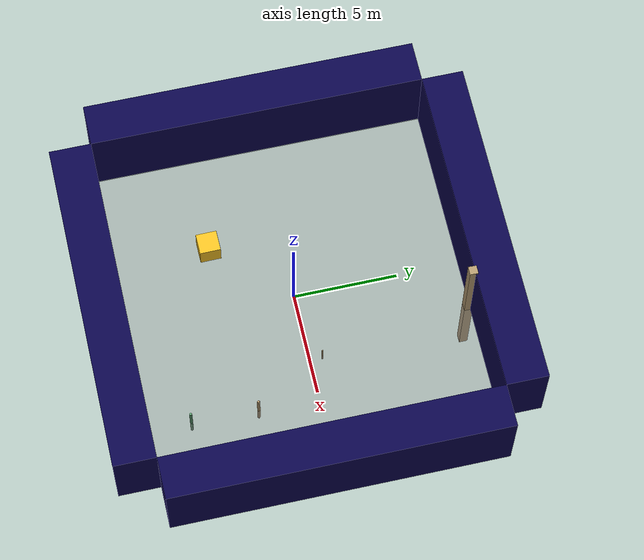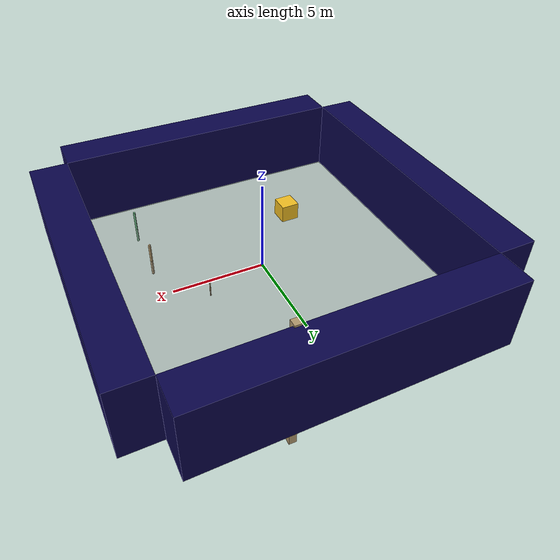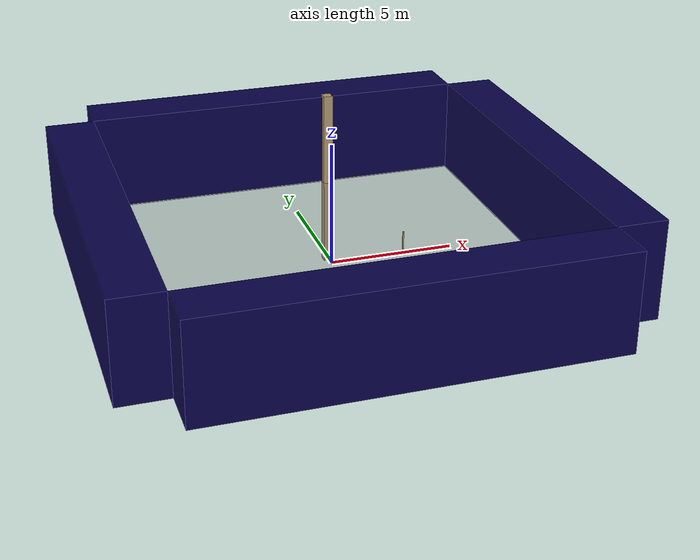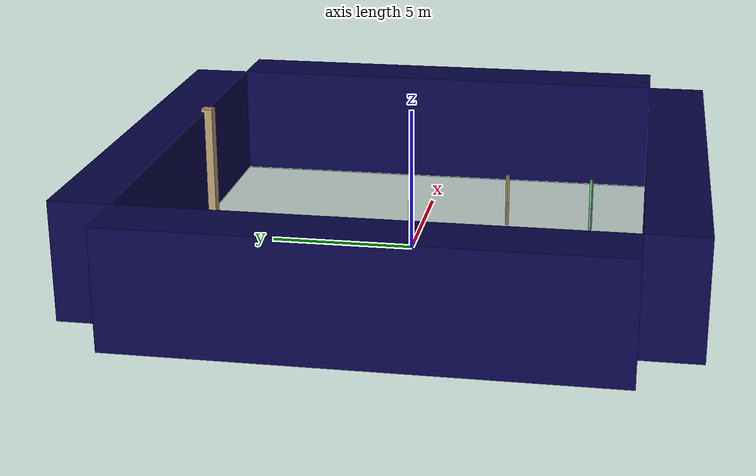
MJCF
<mujoco model="unnamed_model">
  <default>
    <default class="/" />
    <default class="border/" />
    <default class="border_1/" />
    <default class="border_2/" />
    <default class="border_3/" />
    <default class="light/" />
    <default class="agent/" />
    <default class="apple0/" />
    <default class="apple1/" />
    <default class="stone/" />
    <default class="stone_1/" />
  </default>
  <worldbody>
    <body name="border/">
      <body name="border/border" pos="0 9 2">
        <geom name="border/border_geom" class="border/" type="box" size="8.0 1.0 2.0" rgba="0.035 0.016 0.29 1.0" />
      </body>
    </body>
    <body name="border_1/">
      <body name="border_1/border" pos="0 -9 2">
        <geom name="border_1/border_geom" class="border_1/" type="box" size="8.0 1.0 2.0" rgba="0.035 0.016 0.29 1.0" />
      </body>
    </body>
    <body name="border_2/">
      <body name="border_2/border" pos="9 0 2">
        <geom name="border_2/border_geom" class="border_2/" type="box" size="1.0 8.0 2.0" rgba="0.035 0.016 0.29 1.0" />
      </body>
    </body>
    <body name="border_3/">
      <body name="border_3/border" pos="-9 0 2">
        <geom name="border_3/border_geom" class="border_3/" type="box" size="1.0 8.0 2.0" rgba="0.035 0.016 0.29 1.0" />
      </body>
    </body>
    <body name="light/">
      <body name="light/light" pos="0 0 15">
        <geom name="light/light_geom" class="light/" size="0.5" rgba="1.0 1.0 1.0 0.0" />
        <light name="light//unnamed_light_0" class="light/" />
      </body>
    </body>
    <body euler="0 0 270.85081622646982" name="agent/" pos="-3.2036999999999995 -3.4673999999999996 0.5">
      <joint name="agent/boxagent_freeJoint/" class="/" type="free" />
      <body name="agent/agent" pos="0 0 0" euler="0 0 0">
        <geom name="agent/boxagent_geom" class="agent/" type="box" size="0.5 0.5 0.5" rgba="0.949 0.7451 0.1333 1.0" euler="0 0 0" />
        <camera name="agent/boxagent_camera" class="agent/" pos="0 -0.59999999999999998 0" euler="90 0 0" />
      </body>
    </body>
    <body name="apple0/">
      <body name="apple0/apple0" pos="5.2767499999999998 -2.8430999999999997 0.10000000000000001" euler="0 0 -51.064281241954774">
        <geom name="apple0/apple_geom" class="apple0/" type="box" size="0.05 0.05 1.0" rgba="0.6980392156862745 0.6 0.43137254901960786 1.0" />
      </body>
    </body>
    <body name="apple1/">
      <body name="apple1/apple1" pos="3.2357499999999999 0.64750000000000085 0.10000000000000001" euler="0 0 93.505855084838856">
        <geom name="apple1/apple_geom" class="apple1/" type="box" size="0.025 0.025 0.5" rgba="0.6980392156862745 0.6 0.43137254901960786 1.0" />
      </body>
    </body>
    <body name="stone/">
      <body name="stone/stone" pos="2.2438000000000002 7.9139999999999997 0.10000000000000001" euler="0 0 -90.731796377472406">
        <geom name="stone/stone_geom" class="stone/" type="box" size="0.2 0.2 4.0" rgba="0.6980392156862745 0.6 0.43137254901960786 1.0" />
      </body>
    </body>
    <body name="stone_1/">
      <body name="stone_1/stone" pos="5.2056000000000004 -6.0185000000000004 0.10000000000000001" euler="0 0 151.67075920153735">
        <geom name="stone_1/stone_geom" class="stone_1/" type="box" size="0.05 0.05 1.0" rgba="0.396078431372549 0.6705882352941176 0.48627450980392156 1.0" />
      </body>
    </body>
    <geom name="base_plane" class="/" type="plane" size="8 8 0.10000000000000001" />
  </worldbody>
</mujoco>
